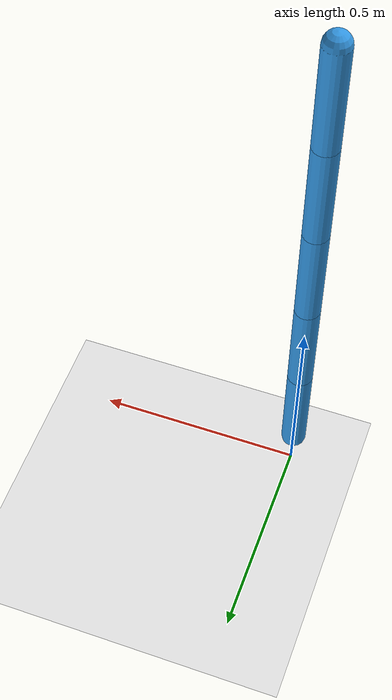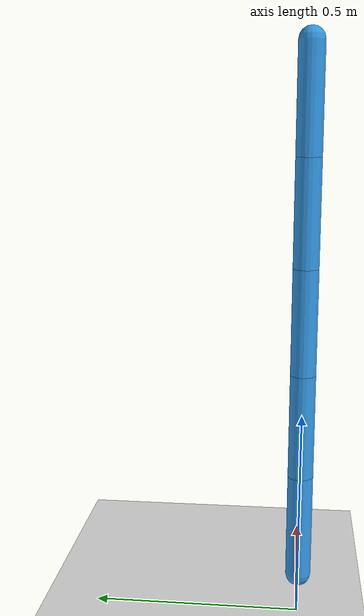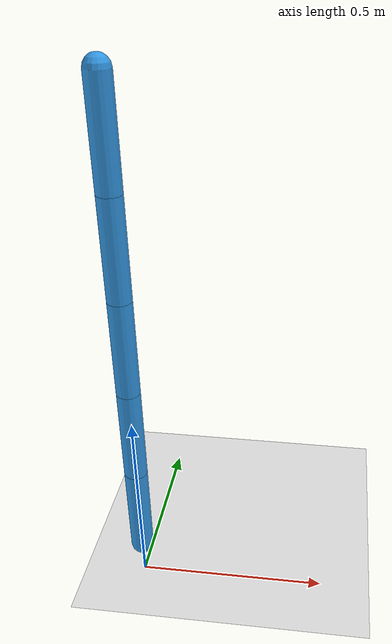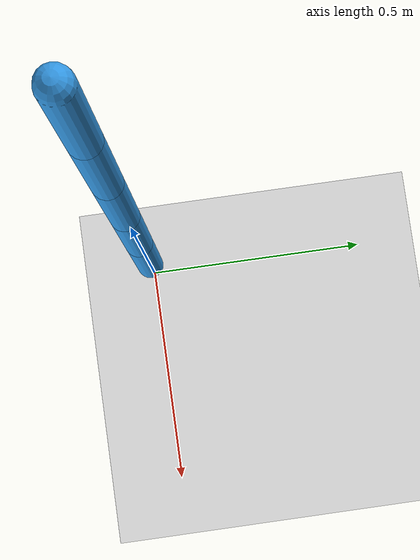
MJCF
<mujoco model="stage2_five_link_chain">

    <!--  GLOBAL OPTIONS       -->
    <option timestep="0.002" gravity="0 0 -9.81" integrator="RK4"/>

    <!--  VISUAL SETTINGS      -->
    <visual>
        <global offwidth="800" offheight="600"/>
    </visual>

    <!--  DEFAULTS             -->
    <default>
        <joint
            type="hinge"
            axis="0 1 0"
            damping="0.2"
            limited="true"
            range="-60 60"/>

        <geom
            type="capsule"
            size="0.03"
            density="1000"
            friction="1 0.1 0.1"
            rgba="0.2 0.6 0.9 1"/>

        <motor
            ctrllimited="true"
            ctrlrange="-1 1"/>
    </default>

    <!--  WORLD BODY           -->
    <worldbody>

        <!-- Ground plane -->
        <geom type="plane" size="5 5 0.1" rgba="0.9 0.9 0.9 1"/>

        <!-- Fixed base -->
        <body name="base" pos="0 0 0.1">

            <!-- Link 1 -->
            <body name="link1" pos="0 0 0">
                <joint name="j1"/>
                <geom fromto="0 0 0  0 0 0.25"/>

                <!-- Link 2 -->
                <body name="link2" pos="0 0 0.25">
                    <joint name="j2"/>
                    <geom fromto="0 0 0  0 0 0.25"/>

                    <!-- Link 3 -->
                    <body name="link3" pos="0 0 0.25">
                        <joint name="j3"/>
                        <geom fromto="0 0 0  0 0 0.25"/>

                        <!-- Link 4 -->
                        <body name="link4" pos="0 0 0.25">
                            <joint name="j4"/>
                            <geom fromto="0 0 0  0 0 0.25"/>

                            <!-- Link 5 -->
                            <body name="link5" pos="0 0 0.25">
                                <joint name="j5"/>
                                <geom fromto="0 0 0  0 0 0.25"/>
                            </body>

                        </body>
                    </body>
                </body>
            </body>
        </body>
    </worldbody>

    <!--  ACTUATORS            -->
    <actuator>
        <motor name="m1" joint="j1" gear="1"/>
        <motor name="m2" joint="j2" gear="1"/>
        <motor name="m3" joint="j3" gear="1"/>
        <motor name="m4" joint="j4" gear="1"/>
        <motor name="m5" joint="j5" gear="1"/>
    </actuator>

</mujoco>
